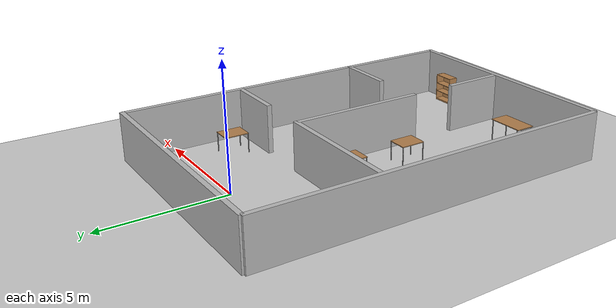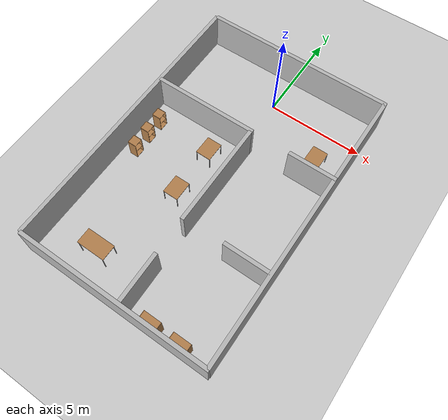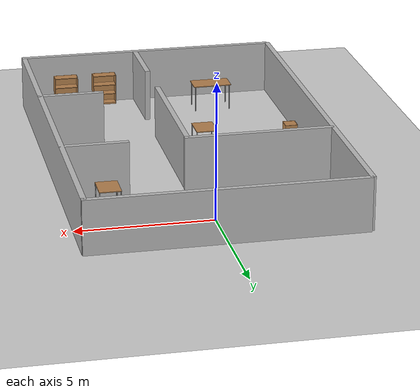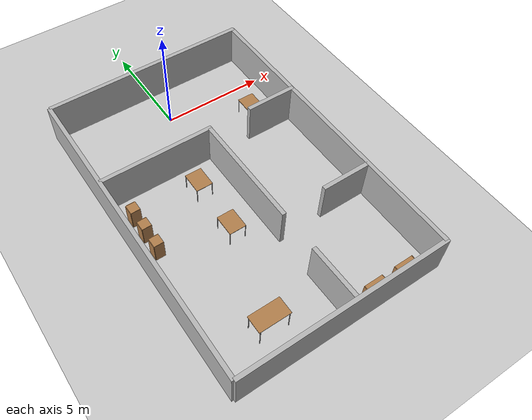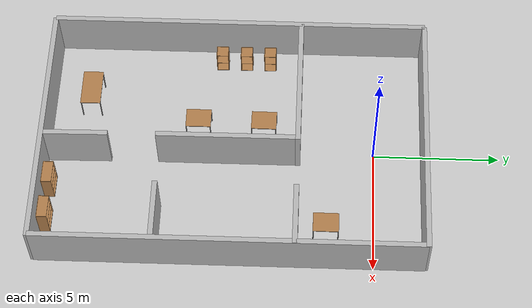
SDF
<sdf version="1.6">
 <world name="default">
  <physics name="default_physics" default="0" type="ode">
   <ode>
    <solver>
     <type>quick</type>
     <iters>20</iters>
     <sor>1</sor>
     <use_dynamic_moi_rescaling>0</use_dynamic_moi_rescaling>
    </solver>
    <constraints>
     <cfm>0</cfm>
     <erp>0.2</erp>
     <contact_max_correcting_vel>100</contact_max_correcting_vel>
     <contact_surface_layer>0</contact_surface_layer>
    </constraints>
   </ode>
   <real_time_update_rate>1000</real_time_update_rate>
   <max_step_size>0.001</max_step_size>
   <real_time_factor>1</real_time_factor>
   <max_contacts>20</max_contacts>
  </physics>
  <light name="sun" type="directional">
   <pose>0 0 10 0 -0 0</pose>
   <diffuse>0.8 0.8 0.8 1</diffuse>
   <specular>0.2 0.2 0.2 1</specular>
   <attenuation>
    <range>1000</range>
    <constant>0.9</constant>
    <linear>0.01</linear>
    <quadratic>0.001</quadratic>
   </attenuation>
   <direction>0.5 0.1 -0.9</direction>
  </light>
  <model name="ground_plane">
   <static>1</static>
   <link name="link">
    <collision name="collision">
     <geometry><plane><normal>0 0 1</normal><size>100 100</size></plane></geometry>
     <surface><friction><ode><mu>100</mu><mu2>50</mu2></ode></friction></surface>
    </collision>
    <visual name="visual">
     <cast_shadows>0</cast_shadows>
     <geometry><plane><normal>0 0 1</normal><size>100 100</size></plane></geometry>
     <material>
      <script><uri>file://media/materials/scripts/gazebo.material</uri><name>Gazebo/Grey</name></script>
     </material>
    </visual>
    <velocity_decay><linear>0</linear><angular>0</angular></velocity_decay>
   </link>
  </model>
  <model name="wall_1_model">
   <pose>0 -13 1 0 -0 0</pose>
   <static>1</static>
   <link name="wall_1_body">
    <inertial>
     <mass>1</mass>
     <inertia><ixx>1</ixx><ixy>0</ixy><ixz>0</ixz><iyy>1</iyy><iyz>0</iyz><izz>1</izz></inertia>
    </inertial>
    <collision name="collision"><geometry><box><size>10 0.2 2</size></box></geometry></collision>
    <visual name="visual"><geometry><box><size>10 0.2 2</size></box></geometry></visual>
    <velocity_decay><linear>0</linear><angular>0</angular></velocity_decay>
   </link>
  </model>
  <model name="wall_2_model">
   <pose>0.001644 1.98596 1 0 -0 0</pose>
   <static>1</static>
   <link name="wall_2_body">
    <inertial>
     <mass>1</mass>
     <inertia><ixx>1</ixx><ixy>0</ixy><ixz>0</ixz><iyy>1</iyy><iyz>0</iyz><izz>1</izz></inertia>
    </inertial>
    <collision name="collision"><geometry><box><size>10 0.2 2</size></box></geometry></collision>
    <visual name="visual"><geometry><box><size>10 0.2 2</size></box></geometry></visual>
    <velocity_decay><linear>0</linear><angular>0</angular></velocity_decay>
   </link>
  </model>
  <model name="wall_3_model">
   <pose>-5 -5.5 1 0 -0 0</pose>
   <static>1</static>
   <link name="wall_3_body">
    <inertial>
     <mass>1</mass>
     <inertia><ixx>1</ixx><ixy>0</ixy><ixz>0</ixz><iyy>1</iyy><iyz>0</iyz><izz>1</izz></inertia>
    </inertial>
    <collision name="collision"><geometry><box><size>0.2 15 2</size></box></geometry></collision>
    <visual name="visual"><geometry><box><size>0.2 15 2</size></box></geometry></visual>
    <velocity_decay><linear>0</linear><angular>0</angular></velocity_decay>
   </link>
  </model>
  <model name="wall_4_model">
   <pose>4.9188 -5.5 1 0 -0 0</pose>
   <static>1</static>
   <link name="wall_4_body">
    <inertial>
     <mass>1</mass>
     <inertia><ixx>1</ixx><ixy>0</ixy><ixz>0</ixz><iyy>1</iyy><iyz>0</iyz><izz>1</izz></inertia>
    </inertial>
    <collision name="collision"><geometry><box><size>0.2 15 2</size></box></geometry></collision>
    <visual name="visual"><geometry><box><size>0.2 15 2</size></box></geometry></visual>
    <velocity_decay><linear>0</linear><angular>0</angular></velocity_decay>
   </link>
  </model>
  <model name="wall_5_model">
   <pose>-2.25 -3 1 0 -0 0</pose>
   <static>1</static>
   <link name="wall_5_body">
    <inertial>
     <mass>1</mass>
     <inertia><ixx>1</ixx><ixy>0</ixy><ixz>0</ixz><iyy>1</iyy><iyz>0</iyz><izz>1</izz></inertia>
    </inertial>
    <collision name="collision"><geometry><box><size>5.5 0.2 2</size></box></geometry></collision>
    <visual name="visual"><geometry><box><size>5.5 0.2 2</size></box></geometry></visual>
    <velocity_decay><linear>0</linear><angular>0</angular></velocity_decay>
   </link>
  </model>
  <model name="wall_6_model">
   <pose>3.75 -3 1 0 -0 0</pose>
   <static>1</static>
   <link name="wall_6_body">
    <inertial>
     <mass>1</mass>
     <inertia><ixx>1</ixx><ixy>0</ixy><ixz>0</ixz><iyy>1</iyy><iyz>0</iyz><izz>1</izz></inertia>
    </inertial>
    <collision name="collision"><geometry><box><size>2.5 0.2 2</size></box></geometry></collision>
    <visual name="visual"><geometry><box><size>2.5 0.2 2</size></box></geometry></visual>
    <velocity_decay><linear>0</linear><angular>0</angular></velocity_decay>
   </link>
  </model>
  <scene><ambient>0.2 0.2 0.2 1</ambient><background>0.7 0.7 0.7 1</background><shadows>1</shadows></scene>
  <model name="cabinet_1">
   <static>0</static>
   <link name="cabinet_bottom_plate">
    <inertial>
     <pose>0 0 -1 0 -0 0</pose>
     <inertia><ixx>2.05</ixx><ixy>0</ixy><ixz>0</ixz><iyy>2.05</iyy><iyz>0</iyz><izz>2.05</izz></inertia>
     <mass>25</mass>
    </inertial>
    <collision name="cabinet_bottom_plate_geom">
     <pose>0 0 0.01 0 -0 0</pose>
     <geometry><box><size>0.45 0.45 0.02</size></box></geometry>
    </collision>
    <visual name="cabinet_bottom_plate_geom_visual">
     <pose>0 0 0.01 0 -0 0</pose>
     <geometry><box><size>0.45 0.45 0.02</size></box></geometry>
     <material>
      <script><uri>file://media/materials/scripts/gazebo.material</uri><name>Gazebo/Wood</name></script>
     </material>
    </visual>
    <collision name="cabinet_bottom_plate_geom_cabinet_back_plate">
     <pose>0.235 0 0.51 0 -0 0</pose>
     <geometry><box><size>0.02 0.45 1.02</size></box></geometry>
    </collision>
    <visual name="cabinet_bottom_plate_geom_cabinet_back_plate_visual">
     <pose>0.235 0 0.51 0 -0 0</pose>
     <geometry><box><size>0.02 0.45 1.02</size></box></geometry>
     <material>
      <script><uri>file://media/materials/scripts/gazebo.material</uri><name>Gazebo/Wood</name></script>
     </material>
    </visual>
    <collision name="cabinet_bottom_plate_geom_cabinet_left_plate">
     <pose>0 0.235 0.51 0 -0 0</pose>
     <geometry><box><size>0.45 0.02 1.02</size></box></geometry>
    </collision>
    <visual name="cabinet_bottom_plate_geom_cabinet_left_plate_visual">
     <pose>0 0.235 0.51 0 -0 0</pose>
     <geometry><box><size>0.45 0.02 1.02</size></box></geometry>
     <material>
      <script><uri>file://media/materials/scripts/gazebo.material</uri><name>Gazebo/Wood</name></script>
     </material>
    </visual>
    <collision name="cabinet_bottom_plate_geom_cabinet_middle_plate">
     <pose>0 0 0.51 0 -0 0</pose>
     <geometry><box><size>0.45 0.45 0.02</size></box></geometry>
    </collision>
    <visual name="cabinet_bottom_plate_geom_cabinet_middle_plate_visual">
     <pose>0 0 0.51 0 -0 0</pose>
     <geometry><box><size>0.45 0.45 0.02</size></box></geometry>
     <material>
      <script><uri>file://media/materials/scripts/gazebo.material</uri><name>Gazebo/Wood</name></script>
     </material>
    </visual>
    <collision name="cabinet_bottom_plate_geom_cabinet_right_plate">
     <pose>0 -0.235 0.51 0 -0 0</pose>
     <geometry><box><size>0.45 0.02 1.02</size></box></geometry>
    </collision>
    <visual name="cabinet_bottom_plate_geom_cabinet_right_plate_visual">
     <pose>0 -0.235 0.51 0 -0 0</pose>
     <geometry><box><size>0.45 0.02 1.02</size></box></geometry>
     <material>
      <script><uri>file://media/materials/scripts/gazebo.material</uri><name>Gazebo/Wood</name></script>
     </material>
    </visual>
    <collision name="cabinet_bottom_plate_geom_cabinet_top_plate">
     <pose>0 0 1.01 0 -0 0</pose>
     <geometry><box><size>0.45 0.45 0.02</size></box></geometry>
    </collision>
    <visual name="cabinet_bottom_plate_geom_cabinet_top_plate_visual">
     <pose>0 0 1.01 0 -0 0</pose>
     <geometry><box><size>0.45 0.45 0.02</size></box></geometry>
     <material>
      <script><uri>file://media/materials/scripts/gazebo.material</uri><name>Gazebo/Wood</name></script>
     </material>
    </visual>
    <velocity_decay><linear>0</linear><angular>0</angular></velocity_decay>
   </link>
   <pose>-4.23296 -4.24315 0 -0 -1e-06 -3.13073</pose>
  </model>
  <model name="table_1">
   <static>0</static>
   <link name="link">
    <collision name="surface">
     <pose>0 0 1 0 -0 0</pose>
     <geometry><box><size>1.5 0.8 0.03</size></box></geometry>
    </collision>
    <visual name="visual1">
     <pose>0 0 1 0 -0 0</pose>
     <geometry><box><size>1.5 0.8 0.03</size></box></geometry>
     <material>
      <script><uri>file://media/materials/scripts/gazebo.material</uri><name>Gazebo/Wood</name></script>
     </material>
    </visual>
    <collision name="front_left_leg">
     <pose>0.68 0.38 0.5 0 -0 0</pose>
     <geometry><cylinder><radius>0.02</radius><length>1</length></cylinder></geometry>
    </collision>
    <visual name="front_left_leg">
     <pose>0.68 0.38 0.5 0 -0 0</pose>
     <geometry><cylinder><radius>0.02</radius><length>1</length></cylinder></geometry>
     <material>
      <script><uri>file://media/materials/scripts/gazebo.material</uri><name>Gazebo/Grey</name></script>
     </material>
    </visual>
    <collision name="front_right_leg">
     <pose>0.68 -0.38 0.5 0 -0 0</pose>
     <geometry><cylinder><radius>0.02</radius><length>1</length></cylinder></geometry>
    </collision>
    <visual name="front_right_leg">
     <pose>0.68 -0.38 0.5 0 -0 0</pose>
     <geometry><cylinder><radius>0.02</radius><length>1</length></cylinder></geometry>
     <material>
      <script><uri>file://media/materials/scripts/gazebo.material</uri><name>Gazebo/Grey</name></script>
     </material>
    </visual>
    <collision name="back_right_leg">
     <pose>-0.68 -0.38 0.5 0 -0 0</pose>
     <geometry><cylinder><radius>0.02</radius><length>1</length></cylinder></geometry>
    </collision>
    <visual name="back_right_leg">
     <pose>-0.68 -0.38 0.5 0 -0 0</pose>
     <geometry><cylinder><radius>0.02</radius><length>1</length></cylinder></geometry>
     <material>
      <script><uri>file://media/materials/scripts/gazebo.material</uri><name>Gazebo/Grey</name></script>
     </material>
    </visual>
    <collision name="back_left_leg">
     <pose>-0.68 0.38 0.5 0 -0 0</pose>
     <geometry><cylinder><radius>0.02</radius><length>1</length></cylinder></geometry>
    </collision>
    <visual name="back_left_leg">
     <pose>-0.68 0.38 0.5 0 -0 0</pose>
     <geometry><cylinder><radius>0.02</radius><length>1</length></cylinder></geometry>
     <material>
      <script><uri>file://media/materials/scripts/gazebo.material</uri><name>Gazebo/Grey</name></script>
     </material>
    </visual>
    <velocity_decay><linear>0</linear><angular>0</angular></velocity_decay>
    <inertial>
     <inertia><ixx>1</ixx><ixy>0</ixy><ixz>0</ixz><iyy>1</iyy><iyz>0</iyz><izz>1</izz></inertia>
     <mass>1</mass>
    </inertial>
   </link>
   <pose>-2.30624 -11.3742 -8e-06 0 -0 0</pose>
  </model>
  <model name="bookshelf_3">
   <static>0</static>
   <link name="link">
    <inertial>
     <mass>1</mass>
     <inertia><ixx>1</ixx><ixy>0</ixy><ixz>0</ixz><iyy>1</iyy><iyz>0</iyz><izz>1</izz></inertia>
    </inertial>
    <collision name="back">
     <pose>0 0.005 0.6 0 -0 0</pose>
     <geometry><box><size>0.9 0.01 1.2</size></box></geometry>
    </collision>
    <visual name="visual1">
     <pose>0 0.005 0.6 0 -0 0</pose>
     <geometry><box><size>0.9 0.01 1.2</size></box></geometry>
     <material>
      <script><uri>file://media/materials/scripts/gazebo.material</uri><name>Gazebo/Wood</name></script>
     </material>
    </visual>
    <collision name="left_side">
     <pose>0.45 -0.195 0.6 0 -0 0</pose>
     <geometry><box><size>0.02 0.4 1.2</size></box></geometry>
    </collision>
    <visual name="visual2">
     <pose>0.45 -0.195 0.6 0 -0 0</pose>
     <geometry><box><size>0.02 0.4 1.2</size></box></geometry>
     <material>
      <script><uri>file://media/materials/scripts/gazebo.material</uri><name>Gazebo/Wood</name></script>
     </material>
    </visual>
    <collision name="right_side">
     <pose>-0.45 -0.195 0.6 0 -0 0</pose>
     <geometry><box><size>0.02 0.4 1.2</size></box></geometry>
    </collision>
    <visual name="visual3">
     <pose>-0.45 -0.195 0.6 0 -0 0</pose>
     <geometry><box><size>0.02 0.4 1.2</size></box></geometry>
     <material>
      <script><uri>file://media/materials/scripts/gazebo.material</uri><name>Gazebo/Wood</name></script>
     </material>
    </visual>
    <collision name="bottom">
     <pose>0 -0.195 0.03 0 -0 0</pose>
     <geometry><box><size>0.88 0.4 0.06</size></box></geometry>
    </collision>
    <visual name="visual4">
     <pose>0 -0.195 0.03 0 -0 0</pose>
     <geometry><box><size>0.88 0.4 0.06</size></box></geometry>
     <material>
      <script><uri>file://media/materials/scripts/gazebo.material</uri><name>Gazebo/Wood</name></script>
     </material>
    </visual>
    <collision name="top">
     <pose>0 -0.195 1.19 0 -0 0</pose>
     <geometry><box><size>0.88 0.4 0.02</size></box></geometry>
    </collision>
    <visual name="visual5">
     <pose>0 -0.195 1.19 0 -0 0</pose>
     <geometry><box><size>0.88 0.4 0.02</size></box></geometry>
     <material>
      <script><uri>file://media/materials/scripts/gazebo.material</uri><name>Gazebo/Wood</name></script>
     </material>
    </visual>
    <collision name="low_shelf">
     <pose>0 -0.195 0.43 0 -0 0</pose>
     <geometry><box><size>0.88 0.4 0.02</size></box></geometry>
    </collision>
    <visual name="visual6">
     <pose>0 -0.195 0.43 0 -0 0</pose>
     <geometry><box><size>0.88 0.4 0.02</size></box></geometry>
     <material>
      <script><uri>file://media/materials/scripts/gazebo.material</uri><name>Gazebo/Wood</name></script>
     </material>
    </visual>
    <collision name="high_shelf">
     <pose>0 -0.195 0.8 0 -0 0</pose>
     <geometry><box><size>0.88 0.4 0.02</size></box></geometry>
    </collision>
    <visual name="visual7">
     <pose>0 -0.195 0.8 0 -0 0</pose>
     <geometry><box><size>0.88 0.4 0.02</size></box></geometry>
     <material>
      <script><uri>file://media/materials/scripts/gazebo.material</uri><name>Gazebo/Wood</name></script>
     </material>
    </visual>
    <velocity_decay><linear>0</linear><angular>0</angular></velocity_decay>
   </link>
   <pose>1.77883 -12.8875 0 -1.8e-05 -0 3.13929</pose>
  </model>
  <gravity>0 0 -9.81</gravity>
  <magnetic_field>6e-06 2.3e-05 -4.2e-05</magnetic_field>
  <atmosphere type="adiabatic"/>
  <spherical_coordinates>
   <surface_model>EARTH_WGS84</surface_model>
   <latitude_deg>0</latitude_deg>
   <longitude_deg>0</longitude_deg>
   <elevation>0</elevation>
   <heading_deg>0</heading_deg>
  </spherical_coordinates>
  <model name="table_2">
   <static>1</static>
   <link name="link">
    <collision name="surface">
     <pose>0 0 0.8 0 -0 0</pose>
     <geometry><box><size>1 0.8 0.03</size></box></geometry>
    </collision>
    <visual name="visual1">
     <pose>0 0 0.8 0 -0 0</pose>
     <geometry><box><size>1 0.8 0.03</size></box></geometry>
     <material>
      <script><uri>file://media/materials/scripts/gazebo.material</uri><name>Gazebo/Wood</name></script>
     </material>
    </visual>
    <collision name="front_left_leg">
     <pose>0.48 0.38 0.4 0 -0 0</pose>
     <geometry><cylinder><radius>0.02</radius><length>0.8</length></cylinder></geometry>
    </collision>
    <visual name="front_left_leg">
     <pose>0.48 0.38 0.4 0 -0 0</pose>
     <geometry><cylinder><radius>0.02</radius><length>0.8</length></cylinder></geometry>
     <material>
      <script><uri>file://media/materials/scripts/gazebo.material</uri><name>Gazebo/Grey</name></script>
     </material>
    </visual>
    <collision name="front_right_leg">
     <pose>0.48 -0.38 0.4 0 -0 0</pose>
     <geometry><cylinder><radius>0.02</radius><length>0.8</length></cylinder></geometry>
    </collision>
    <visual name="front_right_leg">
     <pose>0.48 -0.38 0.4 0 -0 0</pose>
     <geometry><cylinder><radius>0.02</radius><length>0.8</length></cylinder></geometry>
     <material>
      <script><uri>file://media/materials/scripts/gazebo.material</uri><name>Gazebo/Grey</name></script>
     </material>
    </visual>
    <collision name="back_right_leg">
     <pose>-0.48 -0.38 0.4 0 -0 0</pose>
     <geometry><cylinder><radius>0.02</radius><length>0.8</length></cylinder></geometry>
    </collision>
    <visual name="back_right_leg">
     <pose>-0.48 -0.38 0.4 0 -0 0</pose>
     <geometry><cylinder><radius>0.02</radius><length>0.8</length></cylinder></geometry>
     <material>
      <script><uri>file://media/materials/scripts/gazebo.material</uri><name>Gazebo/Grey</name></script>
     </material>
    </visual>
    <collision name="back_left_leg">
     <pose>-0.48 0.38 0.4 0 -0 0</pose>
     <geometry><cylinder><radius>0.02</radius><length>0.8</length></cylinder></geometry>
    </collision>
    <visual name="back_left_leg">
     <pose>-0.48 0.38 0.4 0 -0 0</pose>
     <geometry><cylinder><radius>0.02</radius><length>0.8</length></cylinder></geometry>
     <material>
      <script><uri>file://media/materials/scripts/gazebo.material</uri><name>Gazebo/Grey</name></script>
     </material>
    </visual>
    <velocity_decay><linear>0</linear><angular>0</angular></velocity_decay>
   </link>
   <pose>-1.10904 -7.00227 0 0 -0 1.57054</pose>
  </model>
  <model name="table_3">
   <static>1</static>
   <link name="link">
    <collision name="surface">
     <pose>0 0 0.8 0 -0 0</pose>
     <geometry><box><size>1 0.8 0.03</size></box></geometry>
    </collision>
    <visual name="visual1">
     <pose>0 0 0.8 0 -0 0</pose>
     <geometry><box><size>1 0.8 0.03</size></box></geometry>
     <material>
      <script><uri>file://media/materials/scripts/gazebo.material</uri><name>Gazebo/Wood</name></script>
     </material>
    </visual>
    <collision name="front_left_leg">
     <pose>0.48 0.38 0.4 0 -0 0</pose>
     <geometry><cylinder><radius>0.02</radius><length>0.8</length></cylinder></geometry>
    </collision>
    <visual name="front_left_leg">
     <pose>0.48 0.38 0.4 0 -0 0</pose>
     <geometry><cylinder><radius>0.02</radius><length>0.8</length></cylinder></geometry>
     <material>
      <script><uri>file://media/materials/scripts/gazebo.material</uri><name>Gazebo/Grey</name></script>
     </material>
    </visual>
    <collision name="front_right_leg">
     <pose>0.48 -0.38 0.4 0 -0 0</pose>
     <geometry><cylinder><radius>0.02</radius><length>0.8</length></cylinder></geometry>
    </collision>
    <visual name="front_right_leg">
     <pose>0.48 -0.38 0.4 0 -0 0</pose>
     <geometry><cylinder><radius>0.02</radius><length>0.8</length></cylinder></geometry>
     <material>
      <script><uri>file://media/materials/scripts/gazebo.material</uri><name>Gazebo/Grey</name></script>
     </material>
    </visual>
    <collision name="back_right_leg">
     <pose>-0.48 -0.38 0.4 0 -0 0</pose>
     <geometry><cylinder><radius>0.02</radius><length>0.8</length></cylinder></geometry>
    </collision>
    <visual name="back_right_leg">
     <pose>-0.48 -0.38 0.4 0 -0 0</pose>
     <geometry><cylinder><radius>0.02</radius><length>0.8</length></cylinder></geometry>
     <material>
      <script><uri>file://media/materials/scripts/gazebo.material</uri><name>Gazebo/Grey</name></script>
     </material>
    </visual>
    <collision name="back_left_leg">
     <pose>-0.48 0.38 0.4 0 -0 0</pose>
     <geometry><cylinder><radius>0.02</radius><length>0.8</length></cylinder></geometry>
    </collision>
    <visual name="back_left_leg">
     <pose>-0.48 0.38 0.4 0 -0 0</pose>
     <geometry><cylinder><radius>0.02</radius><length>0.8</length></cylinder></geometry>
     <material>
      <script><uri>file://media/materials/scripts/gazebo.material</uri><name>Gazebo/Grey</name></script>
     </material>
    </visual>
    <velocity_decay><linear>0</linear><angular>0</angular></velocity_decay>
   </link>
   <pose>3.458 -1.83337 0 0 -0 1.56102</pose>
  </model>
  <model name="wall_5_model_clone">
   <pose>0.397535 -5.78846 1 0 0 -1.56944</pose>
   <static>1</static>
   <link name="wall_5_body">
    <inertial>
     <mass>1</mass>
     <inertia><ixx>1</ixx><ixy>0</ixy><ixz>0</ixz><iyy>1</iyy><iyz>0</iyz><izz>1</izz></inertia>
    </inertial>
    <collision name="collision"><geometry><box><size>5.5 0.2 2</size></box></geometry></collision>
    <visual name="visual"><geometry><box><size>5.5 0.2 2</size></box></geometry></visual>
    <velocity_decay><linear>0</linear><angular>0</angular></velocity_decay>
   </link>
  </model>
  <model name="wall_6_model_clone">
   <pose>0.441733 -11.652 1 0 0 -1.55851</pose>
   <static>1</static>
   <link name="wall_6_body">
    <inertial>
     <mass>1</mass>
     <inertia><ixx>1</ixx><ixy>0</ixy><ixz>0</ixz><iyy>1</iyy><iyz>0</iyz><izz>1</izz></inertia>
    </inertial>
    <collision name="collision"><geometry><box><size>2.5 0.2 2</size></box></geometry></collision>
    <visual name="visual"><geometry><box><size>2.5 0.2 2</size></box></geometry></visual>
    <velocity_decay><linear>0</linear><angular>0</angular></velocity_decay>
   </link>
  </model>
  <model name="bookshelf_3_clone">
   <static>0</static>
   <link name="link">
    <inertial>
     <mass>1</mass>
     <inertia><ixx>1</ixx><ixy>0</ixy><ixz>0</ixz><iyy>1</iyy><iyz>0</iyz><izz>1</izz></inertia>
    </inertial>
    <collision name="back">
     <pose>0 0.005 0.6 0 -0 0</pose>
     <geometry><box><size>0.9 0.01 1.2</size></box></geometry>
    </collision>
    <visual name="visual1">
     <pose>0 0.005 0.6 0 -0 0</pose>
     <geometry><box><size>0.9 0.01 1.2</size></box></geometry>
     <material>
      <script><uri>file://media/materials/scripts/gazebo.material</uri><name>Gazebo/Wood</name></script>
     </material>
    </visual>
    <collision name="left_side">
     <pose>0.45 -0.195 0.6 0 -0 0</pose>
     <geometry><box><size>0.02 0.4 1.2</size></box></geometry>
    </collision>
    <visual name="visual2">
     <pose>0.45 -0.195 0.6 0 -0 0</pose>
     <geometry><box><size>0.02 0.4 1.2</size></box></geometry>
     <material>
      <script><uri>file://media/materials/scripts/gazebo.material</uri><name>Gazebo/Wood</name></script>
     </material>
    </visual>
    <collision name="right_side">
     <pose>-0.45 -0.195 0.6 0 -0 0</pose>
     <geometry><box><size>0.02 0.4 1.2</size></box></geometry>
    </collision>
    <visual name="visual3">
     <pose>-0.45 -0.195 0.6 0 -0 0</pose>
     <geometry><box><size>0.02 0.4 1.2</size></box></geometry>
     <material>
      <script><uri>file://media/materials/scripts/gazebo.material</uri><name>Gazebo/Wood</name></script>
     </material>
    </visual>
    <collision name="bottom">
     <pose>0 -0.195 0.03 0 -0 0</pose>
     <geometry><box><size>0.88 0.4 0.06</size></box></geometry>
    </collision>
    <visual name="visual4">
     <pose>0 -0.195 0.03 0 -0 0</pose>
     <geometry><box><size>0.88 0.4 0.06</size></box></geometry>
     <material>
      <script><uri>file://media/materials/scripts/gazebo.material</uri><name>Gazebo/Wood</name></script>
     </material>
    </visual>
    <collision name="top">
     <pose>0 -0.195 1.19 0 -0 0</pose>
     <geometry><box><size>0.88 0.4 0.02</size></box></geometry>
    </collision>
    <visual name="visual5">
     <pose>0 -0.195 1.19 0 -0 0</pose>
     <geometry><box><size>0.88 0.4 0.02</size></box></geometry>
     <material>
      <script><uri>file://media/materials/scripts/gazebo.material</uri><name>Gazebo/Wood</name></script>
     </material>
    </visual>
    <collision name="low_shelf">
     <pose>0 -0.195 0.43 0 -0 0</pose>
     <geometry><box><size>0.88 0.4 0.02</size></box></geometry>
    </collision>
    <visual name="visual6">
     <pose>0 -0.195 0.43 0 -0 0</pose>
     <geometry><box><size>0.88 0.4 0.02</size></box></geometry>
     <material>
      <script><uri>file://media/materials/scripts/gazebo.material</uri><name>Gazebo/Wood</name></script>
     </material>
    </visual>
    <collision name="high_shelf">
     <pose>0 -0.195 0.8 0 -0 0</pose>
     <geometry><box><size>0.88 0.4 0.02</size></box></geometry>
    </collision>
    <visual name="visual7">
     <pose>0 -0.195 0.8 0 -0 0</pose>
     <geometry><box><size>0.88 0.4 0.02</size></box></geometry>
     <material>
      <script><uri>file://media/materials/scripts/gazebo.material</uri><name>Gazebo/Wood</name></script>
     </material>
    </visual>
    <velocity_decay><linear>0</linear><angular>0</angular></velocity_decay>
   </link>
   <pose>3.31714 -12.8893 -1e-06 -9e-06 -3e-06 3.14024</pose>
  </model>
  <model name="table_3_clone">
   <static>1</static>
   <link name="link">
    <collision name="surface">
     <pose>0 0 0.8 0 -0 0</pose>
     <geometry><box><size>1 0.8 0.03</size></box></geometry>
    </collision>
    <visual name="visual1">
     <pose>0 0 0.8 0 -0 0</pose>
     <geometry><box><size>1 0.8 0.03</size></box></geometry>
     <material>
      <script><uri>file://media/materials/scripts/gazebo.material</uri><name>Gazebo/Wood</name></script>
     </material>
    </visual>
    <collision name="front_left_leg">
     <pose>0.48 0.38 0.4 0 -0 0</pose>
     <geometry><cylinder><radius>0.02</radius><length>0.8</length></cylinder></geometry>
    </collision>
    <visual name="front_left_leg">
     <pose>0.48 0.38 0.4 0 -0 0</pose>
     <geometry><cylinder><radius>0.02</radius><length>0.8</length></cylinder></geometry>
     <material>
      <script><uri>file://media/materials/scripts/gazebo.material</uri><name>Gazebo/Grey</name></script>
     </material>
    </visual>
    <collision name="front_right_leg">
     <pose>0.48 -0.38 0.4 0 -0 0</pose>
     <geometry><cylinder><radius>0.02</radius><length>0.8</length></cylinder></geometry>
    </collision>
    <visual name="front_right_leg">
     <pose>0.48 -0.38 0.4 0 -0 0</pose>
     <geometry><cylinder><radius>0.02</radius><length>0.8</length></cylinder></geometry>
     <material>
      <script><uri>file://media/materials/scripts/gazebo.material</uri><name>Gazebo/Grey</name></script>
     </material>
    </visual>
    <collision name="back_right_leg">
     <pose>-0.48 -0.38 0.4 0 -0 0</pose>
     <geometry><cylinder><radius>0.02</radius><length>0.8</length></cylinder></geometry>
    </collision>
    <visual name="back_right_leg">
     <pose>-0.48 -0.38 0.4 0 -0 0</pose>
     <geometry><cylinder><radius>0.02</radius><length>0.8</length></cylinder></geometry>
     <material>
      <script><uri>file://media/materials/scripts/gazebo.material</uri><name>Gazebo/Grey</name></script>
     </material>
    </visual>
    <collision name="back_left_leg">
     <pose>-0.48 0.38 0.4 0 -0 0</pose>
     <geometry><cylinder><radius>0.02</radius><length>0.8</length></cylinder></geometry>
    </collision>
    <visual name="back_left_leg">
     <pose>-0.48 0.38 0.4 0 -0 0</pose>
     <geometry><cylinder><radius>0.02</radius><length>0.8</length></cylinder></geometry>
     <material>
      <script><uri>file://media/materials/scripts/gazebo.material</uri><name>Gazebo/Grey</name></script>
     </material>
    </visual>
    <velocity_decay><linear>0</linear><angular>0</angular></velocity_decay>
   </link>
   <pose>-1.07818 -4.38156 0 0 -0 1.56102</pose>
  </model>
  <model name="wall_6_model_clone_0">
   <pose>3.76268 -8.39401 1 0 -0 0</pose>
   <static>1</static>
   <link name="wall_6_body">
    <inertial>
     <mass>1</mass>
     <inertia><ixx>1</ixx><ixy>0</ixy><ixz>0</ixz><iyy>1</iyy><iyz>0</iyz><izz>1</izz></inertia>
    </inertial>
    <collision name="collision"><geometry><box><size>2.5 0.2 2</size></box></geometry></collision>
    <visual name="visual"><geometry><box><size>2.5 0.2 2</size></box></geometry></visual>
    <velocity_decay><linear>0</linear><angular>0</angular></velocity_decay>
   </link>
  </model>
  <model name="cabinet_1_clone">
   <static>0</static>
   <link name="cabinet_bottom_plate">
    <inertial>
     <pose>0 0 -1 0 -0 0</pose>
     <inertia><ixx>2.05</ixx><ixy>0</ixy><ixz>0</ixz><iyy>2.05</iyy><iyz>0</iyz><izz>2.05</izz></inertia>
     <mass>25</mass>
    </inertial>
    <collision name="cabinet_bottom_plate_geom">
     <pose>0 0 0.01 0 -0 0</pose>
     <geometry><box><size>0.45 0.45 0.02</size></box></geometry>
    </collision>
    <visual name="cabinet_bottom_plate_geom_visual">
     <pose>0 0 0.01 0 -0 0</pose>
     <geometry><box><size>0.45 0.45 0.02</size></box></geometry>
     <material>
      <script><uri>file://media/materials/scripts/gazebo.material</uri><name>Gazebo/Wood</name></script>
     </material>
    </visual>
    <collision name="cabinet_bottom_plate_geom_cabinet_back_plate">
     <pose>0.235 0 0.51 0 -0 0</pose>
     <geometry><box><size>0.02 0.45 1.02</size></box></geometry>
    </collision>
    <visual name="cabinet_bottom_plate_geom_cabinet_back_plate_visual">
     <pose>0.235 0 0.51 0 -0 0</pose>
     <geometry><box><size>0.02 0.45 1.02</size></box></geometry>
     <material>
      <script><uri>file://media/materials/scripts/gazebo.material</uri><name>Gazebo/Wood</name></script>
     </material>
    </visual>
    <collision name="cabinet_bottom_plate_geom_cabinet_left_plate">
     <pose>0 0.235 0.51 0 -0 0</pose>
     <geometry><box><size>0.45 0.02 1.02</size></box></geometry>
    </collision>
    <visual name="cabinet_bottom_plate_geom_cabinet_left_plate_visual">
     <pose>0 0.235 0.51 0 -0 0</pose>
     <geometry><box><size>0.45 0.02 1.02</size></box></geometry>
     <material>
      <script><uri>file://media/materials/scripts/gazebo.material</uri><name>Gazebo/Wood</name></script>
     </material>
    </visual>
    <collision name="cabinet_bottom_plate_geom_cabinet_middle_plate">
     <pose>0 0 0.51 0 -0 0</pose>
     <geometry><box><size>0.45 0.45 0.02</size></box></geometry>
    </collision>
    <visual name="cabinet_bottom_plate_geom_cabinet_middle_plate_visual">
     <pose>0 0 0.51 0 -0 0</pose>
     <geometry><box><size>0.45 0.45 0.02</size></box></geometry>
     <material>
      <script><uri>file://media/materials/scripts/gazebo.material</uri><name>Gazebo/Wood</name></script>
     </material>
    </visual>
    <collision name="cabinet_bottom_plate_geom_cabinet_right_plate">
     <pose>0 -0.235 0.51 0 -0 0</pose>
     <geometry><box><size>0.45 0.02 1.02</size></box></geometry>
    </collision>
    <visual name="cabinet_bottom_plate_geom_cabinet_right_plate_visual">
     <pose>0 -0.235 0.51 0 -0 0</pose>
     <geometry><box><size>0.45 0.02 1.02</size></box></geometry>
     <material>
      <script><uri>file://media/materials/scripts/gazebo.material</uri><name>Gazebo/Wood</name></script>
     </material>
    </visual>
    <collision name="cabinet_bottom_plate_geom_cabinet_top_plate">
     <pose>0 0 1.01 0 -0 0</pose>
     <geometry><box><size>0.45 0.45 0.02</size></box></geometry>
    </collision>
    <visual name="cabinet_bottom_plate_geom_cabinet_top_plate_visual">
     <pose>0 0 1.01 0 -0 0</pose>
     <geometry><box><size>0.45 0.45 0.02</size></box></geometry>
     <material>
      <script><uri>file://media/materials/scripts/gazebo.material</uri><name>Gazebo/Wood</name></script>
     </material>
    </visual>
    <velocity_decay><linear>0</linear><angular>0</angular></velocity_decay>
   </link>
   <pose>-4.23016 -5.20592 0 -1e-06 -0 -3.13144</pose>
  </model>
  <model name="cabinet_1_clone_0">
   <static>0</static>
   <link name="cabinet_bottom_plate">
    <inertial>
     <pose>0 0 -1 0 -0 0</pose>
     <inertia><ixx>2.05</ixx><ixy>0</ixy><ixz>0</ixz><iyy>2.05</iyy><iyz>0</iyz><izz>2.05</izz></inertia>
     <mass>25</mass>
    </inertial>
    <collision name="cabinet_bottom_plate_geom">
     <pose>0 0 0.01 0 -0 0</pose>
     <geometry><box><size>0.45 0.45 0.02</size></box></geometry>
    </collision>
    <visual name="cabinet_bottom_plate_geom_visual">
     <pose>0 0 0.01 0 -0 0</pose>
     <geometry><box><size>0.45 0.45 0.02</size></box></geometry>
     <material>
      <script><uri>file://media/materials/scripts/gazebo.material</uri><name>Gazebo/Wood</name></script>
     </material>
    </visual>
    <collision name="cabinet_bottom_plate_geom_cabinet_back_plate">
     <pose>0.235 0 0.51 0 -0 0</pose>
     <geometry><box><size>0.02 0.45 1.02</size></box></geometry>
    </collision>
    <visual name="cabinet_bottom_plate_geom_cabinet_back_plate_visual">
     <pose>0.235 0 0.51 0 -0 0</pose>
     <geometry><box><size>0.02 0.45 1.02</size></box></geometry>
     <material>
      <script><uri>file://media/materials/scripts/gazebo.material</uri><name>Gazebo/Wood</name></script>
     </material>
    </visual>
    <collision name="cabinet_bottom_plate_geom_cabinet_left_plate">
     <pose>0 0.235 0.51 0 -0 0</pose>
     <geometry><box><size>0.45 0.02 1.02</size></box></geometry>
    </collision>
    <visual name="cabinet_bottom_plate_geom_cabinet_left_plate_visual">
     <pose>0 0.235 0.51 0 -0 0</pose>
     <geometry><box><size>0.45 0.02 1.02</size></box></geometry>
     <material>
      <script><uri>file://media/materials/scripts/gazebo.material</uri><name>Gazebo/Wood</name></script>
     </material>
    </visual>
    <collision name="cabinet_bottom_plate_geom_cabinet_middle_plate">
     <pose>0 0 0.51 0 -0 0</pose>
     <geometry><box><size>0.45 0.45 0.02</size></box></geometry>
    </collision>
    <visual name="cabinet_bottom_plate_geom_cabinet_middle_plate_visual">
     <pose>0 0 0.51 0 -0 0</pose>
     <geometry><box><size>0.45 0.45 0.02</size></box></geometry>
     <material>
      <script><uri>file://media/materials/scripts/gazebo.material</uri><name>Gazebo/Wood</name></script>
     </material>
    </visual>
    <collision name="cabinet_bottom_plate_geom_cabinet_right_plate">
     <pose>0 -0.235 0.51 0 -0 0</pose>
     <geometry><box><size>0.45 0.02 1.02</size></box></geometry>
    </collision>
    <visual name="cabinet_bottom_plate_geom_cabinet_right_plate_visual">
     <pose>0 -0.235 0.51 0 -0 0</pose>
     <geometry><box><size>0.45 0.02 1.02</size></box></geometry>
     <material>
      <script><uri>file://media/materials/scripts/gazebo.material</uri><name>Gazebo/Wood</name></script>
     </material>
    </visual>
    <collision name="cabinet_bottom_plate_geom_cabinet_top_plate">
     <pose>0 0 1.01 0 -0 0</pose>
     <geometry><box><size>0.45 0.45 0.02</size></box></geometry>
    </collision>
    <visual name="cabinet_bottom_plate_geom_cabinet_top_plate_visual">
     <pose>0 0 1.01 0 -0 0</pose>
     <geometry><box><size>0.45 0.45 0.02</size></box></geometry>
     <material>
      <script><uri>file://media/materials/scripts/gazebo.material</uri><name>Gazebo/Wood</name></script>
     </material>
    </visual>
    <velocity_decay><linear>0</linear><angular>0</angular></velocity_decay>
   </link>
   <pose>-4.22841 -6.19216 0 -0 -1e-06 -3.14013</pose>
  </model>
 </world>
</sdf>
